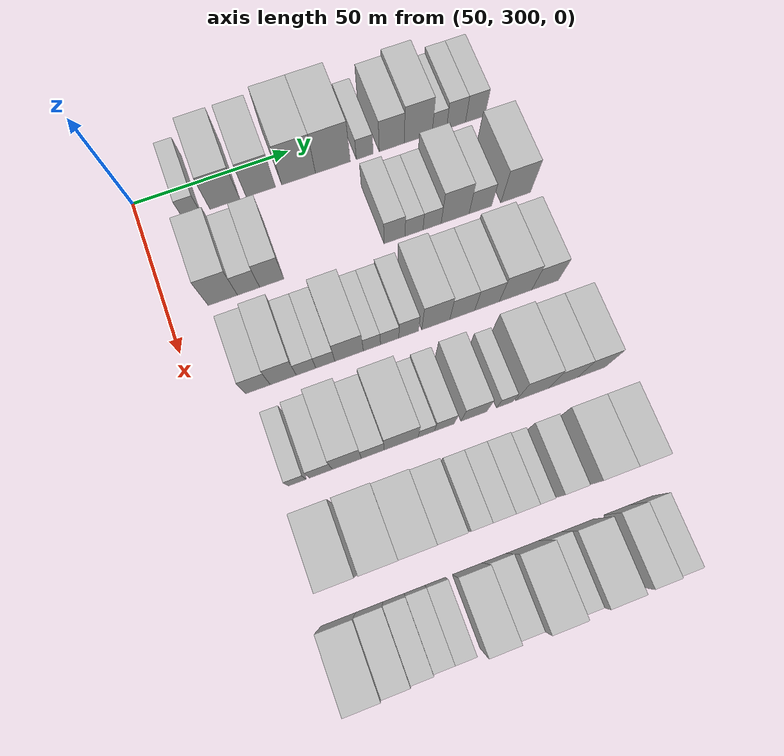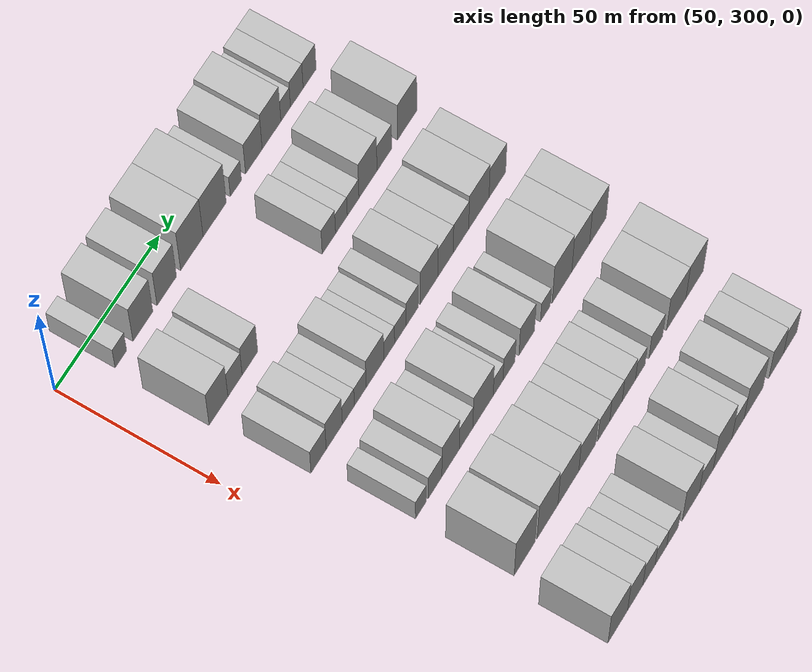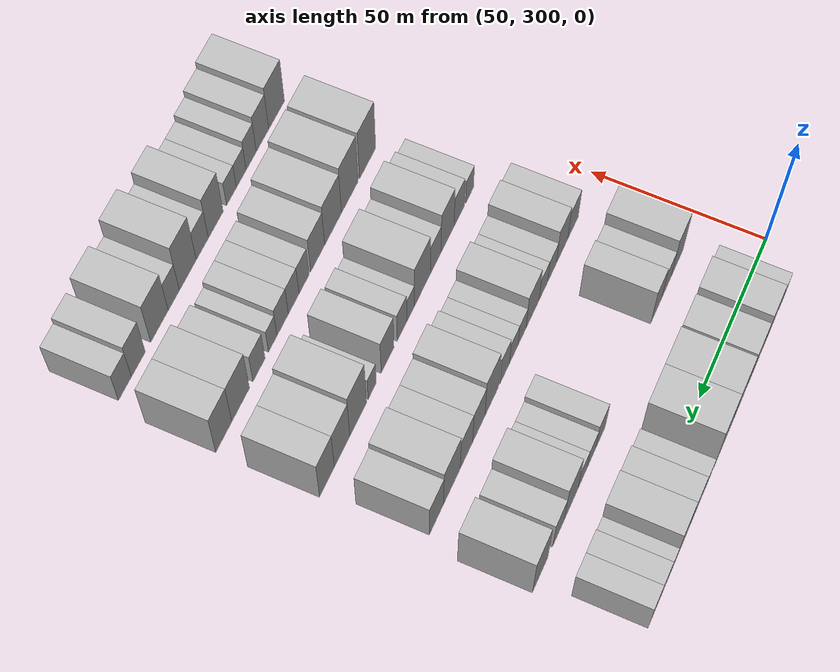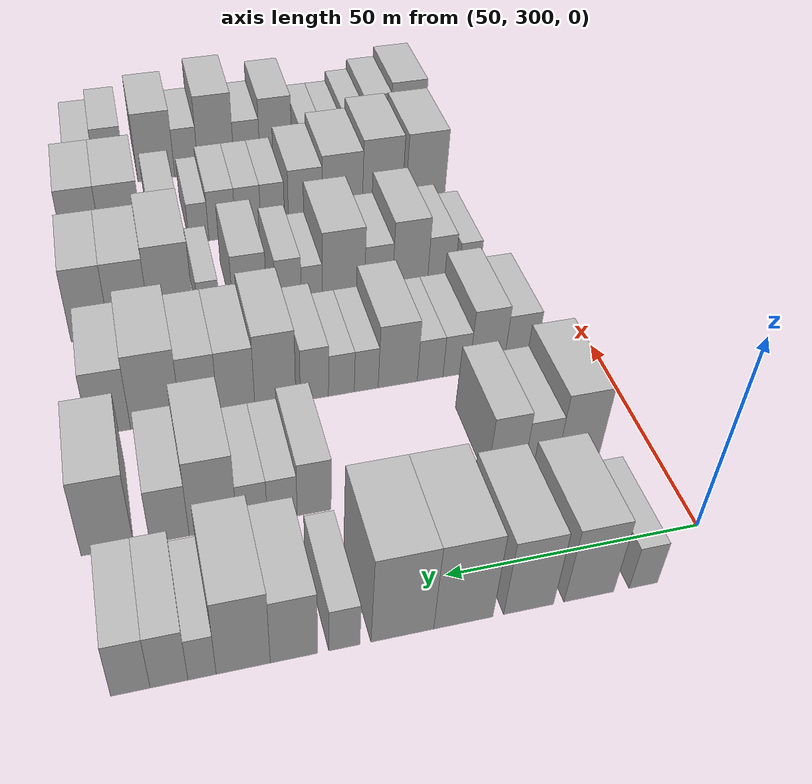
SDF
<sdf version="1.6">
 <world name="default">
  <model name="building_85">
   <static>1</static>
   <pose>50.0000 315.7979 0 0.000000 0.000000 0.000000</pose>
   <link name="link">
    <pose>0 0 6.00 0 0 0</pose>
    <collision name="collision"><geometry><box><size>20.0000 5.5431 12.0000</size></box></geometry></collision>
    <visual name="visual">
     <cast_shadows>0</cast_shadows>
     <geometry><box><size>20.0000 5.5431 12.0000</size></box></geometry>
     <material>
      <script>
       <uri>model://HANNAS_wall/materials/scripts</uri>
       <uri>model://HANNAS_wall/materials/textures</uri>
       <name>vrc/HANNAS_wall</name>
      </script>
     </material>
    </visual>
   </link>
  </model>
  <model name="building_86">
   <static>1</static>
   <pose>50.0000 326.3496 0 0.000000 0.000000 0.000000</pose>
   <link name="link">
    <pose>0 0 10.50 0 0 0</pose>
    <collision name="collision"><geometry><box><size>20.0000 9.5605 21.0000</size></box></geometry></collision>
    <visual name="visual">
     <cast_shadows>0</cast_shadows>
     <geometry><box><size>20.0000 9.5605 21.0000</size></box></geometry>
     <material>
      <script>
       <uri>model://HANNAS_wall/materials/scripts</uri>
       <uri>model://HANNAS_wall/materials/textures</uri>
       <name>vrc/HANNAS_wall</name>
      </script>
     </material>
    </visual>
   </link>
  </model>
  <model name="building_87">
   <static>1</static>
   <pose>50.0000 337.8438 0 0.000000 0.000000 0.000000</pose>
   <link name="link">
    <pose>0 0 10.50 0 0 0</pose>
    <collision name="collision"><geometry><box><size>20.0000 9.4279 21.0000</size></box></geometry></collision>
    <visual name="visual">
     <cast_shadows>0</cast_shadows>
     <geometry><box><size>20.0000 9.4279 21.0000</size></box></geometry>
     <material>
      <script>
       <uri>model://HANNAS_wall/materials/scripts</uri>
       <uri>model://HANNAS_wall/materials/textures</uri>
       <name>vrc/HANNAS_wall</name>
      </script>
     </material>
    </visual>
   </link>
  </model>
  <model name="building_88">
   <static>1</static>
   <pose>50.0000 350.0342 0 0.000000 0.000000 0.000000</pose>
   <link name="link">
    <pose>0 0 12.00 0 0 0</pose>
    <collision name="collision"><geometry><box><size>20.0000 10.9529 24.0000</size></box></geometry></collision>
    <visual name="visual">
     <cast_shadows>0</cast_shadows>
     <geometry><box><size>20.0000 10.9529 24.0000</size></box></geometry>
     <material>
      <script>
       <uri>model://HANNAS_wall/materials/scripts</uri>
       <uri>model://HANNAS_wall/materials/textures</uri>
       <name>vrc/HANNAS_wall</name>
      </script>
     </material>
    </visual>
   </link>
  </model>
  <model name="building_89">
   <static>1</static>
   <pose>50.0000 361.1943 0 0.000000 0.000000 0.000000</pose>
   <link name="link">
    <pose>0 0 12.00 0 0 0</pose>
    <collision name="collision"><geometry><box><size>20.0000 11.3672 24.0000</size></box></geometry></collision>
    <visual name="visual">
     <cast_shadows>0</cast_shadows>
     <geometry><box><size>20.0000 11.3672 24.0000</size></box></geometry>
     <material>
      <script>
       <uri>model://HANNAS_wall/materials/scripts</uri>
       <uri>model://HANNAS_wall/materials/textures</uri>
       <name>vrc/HANNAS_wall</name>
      </script>
     </material>
    </visual>
   </link>
  </model>
  <model name="building_90">
   <static>1</static>
   <pose>50.0000 371.6394 0 0.000000 0.000000 0.000000</pose>
   <link name="link">
    <pose>0 0 6.00 0 0 0</pose>
    <collision name="collision"><geometry><box><size>20.0000 5.5231 12.0000</size></box></geometry></collision>
    <visual name="visual">
     <cast_shadows>0</cast_shadows>
     <geometry><box><size>20.0000 5.5231 12.0000</size></box></geometry>
     <material>
      <script>
       <uri>model://HANNAS_wall/materials/scripts</uri>
       <uri>model://HANNAS_wall/materials/textures</uri>
       <name>vrc/HANNAS_wall</name>
      </script>
     </material>
    </visual>
   </link>
  </model>
  <model name="building_91">
   <static>1</static>
   <pose>50.0000 380.5250 0 0.000000 0.000000 0.000000</pose>
   <link name="link">
    <pose>0 0 9.00 0 0 0</pose>
    <collision name="collision"><geometry><box><size>20.0000 8.2480 18.0000</size></box></geometry></collision>
    <visual name="visual">
     <cast_shadows>0</cast_shadows>
     <geometry><box><size>20.0000 8.2480 18.0000</size></box></geometry>
     <material>
      <script>
       <uri>model://HANNAS_wall/materials/scripts</uri>
       <uri>model://HANNAS_wall/materials/textures</uri>
       <name>vrc/HANNAS_wall</name>
      </script>
     </material>
    </visual>
   </link>
  </model>
  <model name="building_92">
   <static>1</static>
   <pose>50.0000 389.3127 0 0.000000 0.000000 0.000000</pose>
   <link name="link">
    <pose>0 0 10.50 0 0 0</pose>
    <collision name="collision"><geometry><box><size>20.0000 9.3274 21.0000</size></box></geometry></collision>
    <visual name="visual">
     <cast_shadows>0</cast_shadows>
     <geometry><box><size>20.0000 9.3274 21.0000</size></box></geometry>
     <material>
      <script>
       <uri>model://HANNAS_wall/materials/scripts</uri>
       <uri>model://HANNAS_wall/materials/textures</uri>
       <name>vrc/HANNAS_wall</name>
      </script>
     </material>
    </visual>
   </link>
  </model>
  <model name="building_93">
   <static>1</static>
   <pose>50.0000 396.3775 0 0.000000 0.000000 0.000000</pose>
   <link name="link">
    <pose>0 0 6.00 0 0 0</pose>
    <collision name="collision"><geometry><box><size>20.0000 4.8023 12.0000</size></box></geometry></collision>
    <visual name="visual">
     <cast_shadows>0</cast_shadows>
     <geometry><box><size>20.0000 4.8023 12.0000</size></box></geometry>
     <material>
      <script>
       <uri>model://HANNAS_wall/materials/scripts</uri>
       <uri>model://HANNAS_wall/materials/textures</uri>
       <name>vrc/HANNAS_wall</name>
      </script>
     </material>
    </visual>
   </link>
  </model>
  <model name="building_94">
   <static>1</static>
   <pose>50.0000 401.9674 0 0.000000 0.000000 0.000000</pose>
   <link name="link">
    <pose>0 0 7.50 0 0 0</pose>
    <collision name="collision"><geometry><box><size>20.0000 6.3776 15.0000</size></box></geometry></collision>
    <visual name="visual">
     <cast_shadows>0</cast_shadows>
     <geometry><box><size>20.0000 6.3776 15.0000</size></box></geometry>
     <material>
      <script>
       <uri>model://HANNAS_wall/materials/scripts</uri>
       <uri>model://HANNAS_wall/materials/textures</uri>
       <name>vrc/HANNAS_wall</name>
      </script>
     </material>
    </visual>
   </link>
  </model>
  <model name="building_95">
   <static>1</static>
   <pose>50.0000 408.4532 0 0.000000 0.000000 0.000000</pose>
   <link name="link">
    <pose>0 0 7.50 0 0 0</pose>
    <collision name="collision"><geometry><box><size>20.0000 6.5940 15.0000</size></box></geometry></collision>
    <visual name="visual">
     <cast_shadows>0</cast_shadows>
     <geometry><box><size>20.0000 6.5940 15.0000</size></box></geometry>
     <material>
      <script>
       <uri>model://HANNAS_wall/materials/scripts</uri>
       <uri>model://HANNAS_wall/materials/textures</uri>
       <name>vrc/HANNAS_wall</name>
      </script>
     </material>
    </visual>
   </link>
  </model>
  <model name="building_198">
   <static>1</static>
   <pose>79.0000 316.5229 0 0.000000 0.000000 0.000000</pose>
   <link name="link">
    <pose>0 0 10.50 0 0 0</pose>
    <collision name="collision"><geometry><box><size>20.0000 9.0711 21.0000</size></box></geometry></collision>
    <visual name="visual">
     <cast_shadows>0</cast_shadows>
     <geometry><box><size>20.0000 9.0711 21.0000</size></box></geometry>
     <material>
      <script>
       <uri>model://HANNAS_wall/materials/scripts</uri>
       <uri>model://HANNAS_wall/materials/textures</uri>
       <name>vrc/HANNAS_wall</name>
      </script>
     </material>
    </visual>
   </link>
  </model>
  <model name="building_199">
   <static>1</static>
   <pose>79.0000 324.5055 0 0.000000 0.000000 0.000000</pose>
   <link name="link">
    <pose>0 0 7.50 0 0 0</pose>
    <collision name="collision"><geometry><box><size>20.0000 6.8941 15.0000</size></box></geometry></collision>
    <visual name="visual">
     <cast_shadows>0</cast_shadows>
     <geometry><box><size>20.0000 6.8941 15.0000</size></box></geometry>
     <material>
      <script>
       <uri>model://HANNAS_wall/materials/scripts</uri>
       <uri>model://HANNAS_wall/materials/textures</uri>
       <name>vrc/HANNAS_wall</name>
      </script>
     </material>
    </visual>
   </link>
  </model>
  <model name="building_200">
   <static>1</static>
   <pose>79.0000 331.7432 0 0.000000 0.000000 0.000000</pose>
   <link name="link">
    <pose>0 0 9.00 0 0 0</pose>
    <collision name="collision"><geometry><box><size>20.0000 7.5812 18.0000</size></box></geometry></collision>
    <visual name="visual">
     <cast_shadows>0</cast_shadows>
     <geometry><box><size>20.0000 7.5812 18.0000</size></box></geometry>
     <material>
      <script>
       <uri>model://HANNAS_wall/materials/scripts</uri>
       <uri>model://HANNAS_wall/materials/textures</uri>
       <name>vrc/HANNAS_wall</name>
      </script>
     </material>
    </visual>
   </link>
  </model>
  <model name="building_201">
   <static>1</static>
   <pose>79.0000 370.5693 0 0.000000 0.000000 0.000000</pose>
   <link name="link">
    <pose>0 0 7.50 0 0 0</pose>
    <collision name="collision"><geometry><box><size>20.0000 6.6903 15.0000</size></box></geometry></collision>
    <visual name="visual">
     <cast_shadows>0</cast_shadows>
     <geometry><box><size>20.0000 6.6903 15.0000</size></box></geometry>
     <material>
      <script>
       <uri>model://HANNAS_wall/materials/scripts</uri>
       <uri>model://HANNAS_wall/materials/textures</uri>
       <name>vrc/HANNAS_wall</name>
      </script>
     </material>
    </visual>
   </link>
  </model>
  <model name="building_202">
   <static>1</static>
   <pose>79.0000 376.8234 0 0.000000 0.000000 0.000000</pose>
   <link name="link">
    <pose>0 0 6.00 0 0 0</pose>
    <collision name="collision"><geometry><box><size>20.0000 5.8180 12.0000</size></box></geometry></collision>
    <visual name="visual">
     <cast_shadows>0</cast_shadows>
     <geometry><box><size>20.0000 5.8180 12.0000</size></box></geometry>
     <material>
      <script>
       <uri>model://HANNAS_wall/materials/scripts</uri>
       <uri>model://HANNAS_wall/materials/textures</uri>
       <name>vrc/HANNAS_wall</name>
      </script>
     </material>
    </visual>
   </link>
  </model>
  <model name="building_203">
   <static>1</static>
   <pose>79.0000 382.6654 0 0.000000 0.000000 0.000000</pose>
   <link name="link">
    <pose>0 0 6.00 0 0 0</pose>
    <collision name="collision"><geometry><box><size>20.0000 5.8659 12.0000</size></box></geometry></collision>
    <visual name="visual">
     <cast_shadows>0</cast_shadows>
     <geometry><box><size>20.0000 5.8659 12.0000</size></box></geometry>
     <material>
      <script>
       <uri>model://HANNAS_wall/materials/scripts</uri>
       <uri>model://HANNAS_wall/materials/textures</uri>
       <name>vrc/HANNAS_wall</name>
      </script>
     </material>
    </visual>
   </link>
  </model>
  <model name="building_204">
   <static>1</static>
   <pose>79.0000 390.1574 0 0.000000 0.000000 0.000000</pose>
   <link name="link">
    <pose>0 0 10.50 0 0 0</pose>
    <collision name="collision"><geometry><box><size>20.0000 9.1180 21.0000</size></box></geometry></collision>
    <visual name="visual">
     <cast_shadows>0</cast_shadows>
     <geometry><box><size>20.0000 9.1180 21.0000</size></box></geometry>
     <material>
      <script>
       <uri>model://HANNAS_wall/materials/scripts</uri>
       <uri>model://HANNAS_wall/materials/textures</uri>
       <name>vrc/HANNAS_wall</name>
      </script>
     </material>
    </visual>
   </link>
  </model>
  <model name="building_205">
   <static>1</static>
   <pose>79.0000 398.4284 0 0.000000 0.000000 0.000000</pose>
   <link name="link">
    <pose>0 0 7.50 0 0 0</pose>
    <collision name="collision"><geometry><box><size>20.0000 7.4241 15.0000</size></box></geometry></collision>
    <visual name="visual">
     <cast_shadows>0</cast_shadows>
     <geometry><box><size>20.0000 7.4241 15.0000</size></box></geometry>
     <material>
      <script>
       <uri>model://HANNAS_wall/materials/scripts</uri>
       <uri>model://HANNAS_wall/materials/textures</uri>
       <name>vrc/HANNAS_wall</name>
      </script>
     </material>
    </visual>
   </link>
  </model>
  <model name="building_206">
   <static>1</static>
   <pose>79.0000 410.0392 0 0.000000 0.000000 0.000000</pose>
   <link name="link">
    <pose>0 0 10.50 0 0 0</pose>
    <collision name="collision"><geometry><box><size>20.0000 9.7975 21.0000</size></box></geometry></collision>
    <visual name="visual">
     <cast_shadows>0</cast_shadows>
     <geometry><box><size>20.0000 9.7975 21.0000</size></box></geometry>
     <material>
      <script>
       <uri>model://HANNAS_wall/materials/scripts</uri>
       <uri>model://HANNAS_wall/materials/textures</uri>
       <name>vrc/HANNAS_wall</name>
      </script>
     </material>
    </visual>
   </link>
  </model>
  <model name="building_303">
   <static>1</static>
   <pose>108.0000 317.9214 0 0.000000 0.000000 0.000000</pose>
   <link name="link">
    <pose>0 0 7.50 0 0 0</pose>
    <collision name="collision"><geometry><box><size>20.0000 7.4263 15.0000</size></box></geometry></collision>
    <visual name="visual">
     <cast_shadows>0</cast_shadows>
     <geometry><box><size>20.0000 7.4263 15.0000</size></box></geometry>
     <material>
      <script>
       <uri>model://HANNAS_wall/materials/scripts</uri>
       <uri>model://HANNAS_wall/materials/textures</uri>
       <name>vrc/HANNAS_wall</name>
      </script>
     </material>
    </visual>
   </link>
  </model>
  <model name="building_304">
   <static>1</static>
   <pose>108.0000 325.5840 0 0.000000 0.000000 0.000000</pose>
   <link name="link">
    <pose>0 0 9.00 0 0 0</pose>
    <collision name="collision"><geometry><box><size>20.0000 7.8989 18.0000</size></box></geometry></collision>
    <visual name="visual">
     <cast_shadows>0</cast_shadows>
     <geometry><box><size>20.0000 7.8989 18.0000</size></box></geometry>
     <material>
      <script>
       <uri>model://HANNAS_wall/materials/scripts</uri>
       <uri>model://HANNAS_wall/materials/textures</uri>
       <name>vrc/HANNAS_wall</name>
      </script>
     </material>
    </visual>
   </link>
  </model>
  <model name="building_305">
   <static>1</static>
   <pose>108.0000 332.5083 0 0.000000 0.000000 0.000000</pose>
   <link name="link">
    <pose>0 0 6.00 0 0 0</pose>
    <collision name="collision"><geometry><box><size>20.0000 5.9497 12.0000</size></box></geometry></collision>
    <visual name="visual">
     <cast_shadows>0</cast_shadows>
     <geometry><box><size>20.0000 5.9497 12.0000</size></box></geometry>
     <material>
      <script>
       <uri>model://HANNAS_wall/materials/scripts</uri>
       <uri>model://HANNAS_wall/materials/textures</uri>
       <name>vrc/HANNAS_wall</name>
      </script>
     </material>
    </visual>
   </link>
  </model>
  <model name="building_306">
   <static>1</static>
   <pose>108.0000 338.3884 0 0.000000 0.000000 0.000000</pose>
   <link name="link">
    <pose>0 0 6.00 0 0 0</pose>
    <collision name="collision"><geometry><box><size>20.0000 5.8105 12.0000</size></box></geometry></collision>
    <visual name="visual">
     <cast_shadows>0</cast_shadows>
     <geometry><box><size>20.0000 5.8105 12.0000</size></box></geometry>
     <material>
      <script>
       <uri>model://HANNAS_wall/materials/scripts</uri>
       <uri>model://HANNAS_wall/materials/textures</uri>
       <name>vrc/HANNAS_wall</name>
      </script>
     </material>
    </visual>
   </link>
  </model>
  <model name="building_307">
   <static>1</static>
   <pose>108.0000 345.6758 0 0.000000 0.000000 0.000000</pose>
   <link name="link">
    <pose>0 0 9.00 0 0 0</pose>
    <collision name="collision"><geometry><box><size>20.0000 8.7642 18.0000</size></box></geometry></collision>
    <visual name="visual">
     <cast_shadows>0</cast_shadows>
     <geometry><box><size>20.0000 8.7642 18.0000</size></box></geometry>
     <material>
      <script>
       <uri>model://HANNAS_wall/materials/scripts</uri>
       <uri>model://HANNAS_wall/materials/textures</uri>
       <name>vrc/HANNAS_wall</name>
      </script>
     </material>
    </visual>
   </link>
  </model>
  <model name="building_308">
   <static>1</static>
   <pose>108.0000 352.7109 0 0.000000 0.000000 0.000000</pose>
   <link name="link">
    <pose>0 0 6.00 0 0 0</pose>
    <collision name="collision"><geometry><box><size>20.0000 5.3061 12.0000</size></box></geometry></collision>
    <visual name="visual">
     <cast_shadows>0</cast_shadows>
     <geometry><box><size>20.0000 5.3061 12.0000</size></box></geometry>
     <material>
      <script>
       <uri>model://HANNAS_wall/materials/scripts</uri>
       <uri>model://HANNAS_wall/materials/textures</uri>
       <name>vrc/HANNAS_wall</name>
      </script>
     </material>
    </visual>
   </link>
  </model>
  <model name="building_309">
   <static>1</static>
   <pose>108.0000 358.1992 0 0.000000 0.000000 0.000000</pose>
   <link name="link">
    <pose>0 0 6.00 0 0 0</pose>
    <collision name="collision"><geometry><box><size>20.0000 5.6704 12.0000</size></box></geometry></collision>
    <visual name="visual">
     <cast_shadows>0</cast_shadows>
     <geometry><box><size>20.0000 5.6704 12.0000</size></box></geometry>
     <material>
      <script>
       <uri>model://HANNAS_wall/materials/scripts</uri>
       <uri>model://HANNAS_wall/materials/textures</uri>
       <name>vrc/HANNAS_wall</name>
      </script>
     </material>
    </visual>
   </link>
  </model>
  <model name="building_310">
   <static>1</static>
   <pose>108.0000 364.1010 0 0.000000 0.000000 0.000000</pose>
   <link name="link">
    <pose>0 0 7.50 0 0 0</pose>
    <collision name="collision"><geometry><box><size>20.0000 6.1331 15.0000</size></box></geometry></collision>
    <visual name="visual">
     <cast_shadows>0</cast_shadows>
     <geometry><box><size>20.0000 6.1331 15.0000</size></box></geometry>
     <material>
      <script>
       <uri>model://HANNAS_wall/materials/scripts</uri>
       <uri>model://HANNAS_wall/materials/textures</uri>
       <name>vrc/HANNAS_wall</name>
      </script>
     </material>
    </visual>
   </link>
  </model>
  <model name="building_311">
   <static>1</static>
   <pose>108.0000 372.5621 0 0.000000 0.000000 0.000000</pose>
   <link name="link">
    <pose>0 0 10.50 0 0 0</pose>
    <collision name="collision"><geometry><box><size>20.0000 8.7891 21.0000</size></box></geometry></collision>
    <visual name="visual">
     <cast_shadows>0</cast_shadows>
     <geometry><box><size>20.0000 8.7891 21.0000</size></box></geometry>
     <material>
      <script>
       <uri>model://HANNAS_wall/materials/scripts</uri>
       <uri>model://HANNAS_wall/materials/textures</uri>
       <name>vrc/HANNAS_wall</name>
      </script>
     </material>
    </visual>
   </link>
  </model>
  <model name="building_312">
   <static>1</static>
   <pose>108.0000 380.8863 0 0.000000 0.000000 0.000000</pose>
   <link name="link">
    <pose>0 0 9.00 0 0 0</pose>
    <collision name="collision"><geometry><box><size>20.0000 7.8594 18.0000</size></box></geometry></collision>
    <visual name="visual">
     <cast_shadows>0</cast_shadows>
     <geometry><box><size>20.0000 7.8594 18.0000</size></box></geometry>
     <material>
      <script>
       <uri>model://HANNAS_wall/materials/scripts</uri>
       <uri>model://HANNAS_wall/materials/textures</uri>
       <name>vrc/HANNAS_wall</name>
      </script>
     </material>
    </visual>
   </link>
  </model>
  <model name="building_313">
   <static>1</static>
   <pose>108.0000 388.7379 0 0.000000 0.000000 0.000000</pose>
   <link name="link">
    <pose>0 0 9.00 0 0 0</pose>
    <collision name="collision"><geometry><box><size>20.0000 7.8436 18.0000</size></box></geometry></collision>
    <visual name="visual">
     <cast_shadows>0</cast_shadows>
     <geometry><box><size>20.0000 7.8436 18.0000</size></box></geometry>
     <material>
      <script>
       <uri>model://HANNAS_wall/materials/scripts</uri>
       <uri>model://HANNAS_wall/materials/textures</uri>
       <name>vrc/HANNAS_wall</name>
      </script>
     </material>
    </visual>
   </link>
  </model>
  <model name="building_314">
   <static>1</static>
   <pose>108.0000 397.8524 0 0.000000 0.000000 0.000000</pose>
   <link name="link">
    <pose>0 0 10.50 0 0 0</pose>
    <collision name="collision"><geometry><box><size>20.0000 10.3856 21.0000</size></box></geometry></collision>
    <visual name="visual">
     <cast_shadows>0</cast_shadows>
     <geometry><box><size>20.0000 10.3856 21.0000</size></box></geometry>
     <material>
      <script>
       <uri>model://HANNAS_wall/materials/scripts</uri>
       <uri>model://HANNAS_wall/materials/textures</uri>
       <name>vrc/HANNAS_wall</name>
      </script>
     </material>
    </visual>
   </link>
  </model>
  <model name="building_315">
   <static>1</static>
   <pose>108.0000 407.3504 0 0.000000 0.000000 0.000000</pose>
   <link name="link">
    <pose>0 0 9.00 0 0 0</pose>
    <collision name="collision"><geometry><box><size>20.0000 8.6105 18.0000</size></box></geometry></collision>
    <visual name="visual">
     <cast_shadows>0</cast_shadows>
     <geometry><box><size>20.0000 8.6105 18.0000</size></box></geometry>
     <material>
      <script>
       <uri>model://HANNAS_wall/materials/scripts</uri>
       <uri>model://HANNAS_wall/materials/textures</uri>
       <name>vrc/HANNAS_wall</name>
      </script>
     </material>
    </visual>
   </link>
  </model>
  <model name="building_421">
   <static>1</static>
   <pose>137.0000 319.9245 0 0.000000 0.000000 0.000000</pose>
   <link name="link">
    <pose>0 0 6.00 0 0 0</pose>
    <collision name="collision"><geometry><box><size>20.0000 5.2541 12.0000</size></box></geometry></collision>
    <visual name="visual">
     <cast_shadows>0</cast_shadows>
     <geometry><box><size>20.0000 5.2541 12.0000</size></box></geometry>
     <material>
      <script>
       <uri>model://HANNAS_wall/materials/scripts</uri>
       <uri>model://HANNAS_wall/materials/textures</uri>
       <name>vrc/HANNAS_wall</name>
      </script>
     </material>
    </visual>
   </link>
  </model>
  <model name="building_422">
   <static>1</static>
   <pose>137.0000 326.9201 0 0.000000 0.000000 0.000000</pose>
   <link name="link">
    <pose>0 0 7.50 0 0 0</pose>
    <collision name="collision"><geometry><box><size>20.0000 6.7370 15.0000</size></box></geometry></collision>
    <visual name="visual">
     <cast_shadows>0</cast_shadows>
     <geometry><box><size>20.0000 6.7370 15.0000</size></box></geometry>
     <material>
      <script>
       <uri>model://HANNAS_wall/materials/scripts</uri>
       <uri>model://HANNAS_wall/materials/textures</uri>
       <name>vrc/HANNAS_wall</name>
      </script>
     </material>
    </visual>
   </link>
  </model>
  <model name="building_423">
   <static>1</static>
   <pose>137.0000 334.6000 0 0.000000 0.000000 0.000000</pose>
   <link name="link">
    <pose>0 0 10.50 0 0 0</pose>
    <collision name="collision"><geometry><box><size>20.0000 8.6229 21.0000</size></box></geometry></collision>
    <visual name="visual">
     <cast_shadows>0</cast_shadows>
     <geometry><box><size>20.0000 8.6229 21.0000</size></box></geometry>
     <material>
      <script>
       <uri>model://HANNAS_wall/materials/scripts</uri>
       <uri>model://HANNAS_wall/materials/textures</uri>
       <name>vrc/HANNAS_wall</name>
      </script>
     </material>
    </visual>
   </link>
  </model>
  <model name="building_424">
   <static>1</static>
   <pose>137.0000 342.2988 0 0.000000 0.000000 0.000000</pose>
   <link name="link">
    <pose>0 0 7.50 0 0 0</pose>
    <collision name="collision"><geometry><box><size>20.0000 6.7746 15.0000</size></box></geometry></collision>
    <visual name="visual">
     <cast_shadows>0</cast_shadows>
     <geometry><box><size>20.0000 6.7746 15.0000</size></box></geometry>
     <material>
      <script>
       <uri>model://HANNAS_wall/materials/scripts</uri>
       <uri>model://HANNAS_wall/materials/textures</uri>
       <name>vrc/HANNAS_wall</name>
      </script>
     </material>
    </visual>
   </link>
  </model>
  <model name="building_425">
   <static>1</static>
   <pose>137.0000 350.7917 0 0.000000 0.000000 0.000000</pose>
   <link name="link">
    <pose>0 0 10.50 0 0 0</pose>
    <collision name="collision"><geometry><box><size>20.0000 10.2112 21.0000</size></box></geometry></collision>
    <visual name="visual">
     <cast_shadows>0</cast_shadows>
     <geometry><box><size>20.0000 10.2112 21.0000</size></box></geometry>
     <material>
      <script>
       <uri>model://HANNAS_wall/materials/scripts</uri>
       <uri>model://HANNAS_wall/materials/textures</uri>
       <name>vrc/HANNAS_wall</name>
      </script>
     </material>
    </visual>
   </link>
  </model>
  <model name="building_426">
   <static>1</static>
   <pose>137.0000 358.3612 0 0.000000 0.000000 0.000000</pose>
   <link name="link">
    <pose>0 0 6.00 0 0 0</pose>
    <collision name="collision"><geometry><box><size>20.0000 4.9278 12.0000</size></box></geometry></collision>
    <visual name="visual">
     <cast_shadows>0</cast_shadows>
     <geometry><box><size>20.0000 4.9278 12.0000</size></box></geometry>
     <material>
      <script>
       <uri>model://HANNAS_wall/materials/scripts</uri>
       <uri>model://HANNAS_wall/materials/textures</uri>
       <name>vrc/HANNAS_wall</name>
      </script>
     </material>
    </visual>
   </link>
  </model>
  <model name="building_427">
   <static>1</static>
   <pose>137.0000 363.8681 0 0.000000 0.000000 0.000000</pose>
   <link name="link">
    <pose>0 0 7.50 0 0 0</pose>
    <collision name="collision"><geometry><box><size>20.0000 6.0860 15.0000</size></box></geometry></collision>
    <visual name="visual">
     <cast_shadows>0</cast_shadows>
     <geometry><box><size>20.0000 6.0860 15.0000</size></box></geometry>
     <material>
      <script>
       <uri>model://HANNAS_wall/materials/scripts</uri>
       <uri>model://HANNAS_wall/materials/textures</uri>
       <name>vrc/HANNAS_wall</name>
      </script>
     </material>
    </visual>
   </link>
  </model>
  <model name="building_428">
   <static>1</static>
   <pose>137.0000 372.8787 0 0.000000 0.000000 0.000000</pose>
   <link name="link">
    <pose>0 0 9.00 0 0 0</pose>
    <collision name="collision"><geometry><box><size>20.0000 7.9352 18.0000</size></box></geometry></collision>
    <visual name="visual">
     <cast_shadows>0</cast_shadows>
     <geometry><box><size>20.0000 7.9352 18.0000</size></box></geometry>
     <material>
      <script>
       <uri>model://HANNAS_wall/materials/scripts</uri>
       <uri>model://HANNAS_wall/materials/textures</uri>
       <name>vrc/HANNAS_wall</name>
      </script>
     </material>
    </visual>
   </link>
  </model>
  <model name="building_429">
   <static>1</static>
   <pose>137.0000 382.3385 0 0.000000 0.000000 0.000000</pose>
   <link name="link">
    <pose>0 0 6.00 0 0 0</pose>
    <collision name="collision"><geometry><box><size>20.0000 4.9844 12.0000</size></box></geometry></collision>
    <visual name="visual">
     <cast_shadows>0</cast_shadows>
     <geometry><box><size>20.0000 4.9844 12.0000</size></box></geometry>
     <material>
      <script>
       <uri>model://HANNAS_wall/materials/scripts</uri>
       <uri>model://HANNAS_wall/materials/textures</uri>
       <name>vrc/HANNAS_wall</name>
      </script>
     </material>
    </visual>
   </link>
  </model>
  <model name="building_430">
   <static>1</static>
   <pose>137.0000 390.8754 0 0.000000 0.000000 0.000000</pose>
   <link name="link">
    <pose>0 0 12.00 0 0 0</pose>
    <collision name="collision"><geometry><box><size>20.0000 10.0893 24.0000</size></box></geometry></collision>
    <visual name="visual">
     <cast_shadows>0</cast_shadows>
     <geometry><box><size>20.0000 10.0893 24.0000</size></box></geometry>
     <material>
      <script>
       <uri>model://HANNAS_wall/materials/scripts</uri>
       <uri>model://HANNAS_wall/materials/textures</uri>
       <name>vrc/HANNAS_wall</name>
      </script>
     </material>
    </visual>
   </link>
  </model>
  <model name="building_431">
   <static>1</static>
   <pose>137.0000 400.5098 0 0.000000 0.000000 0.000000</pose>
   <link name="link">
    <pose>0 0 10.50 0 0 0</pose>
    <collision name="collision"><geometry><box><size>20.0000 9.1795 21.0000</size></box></geometry></collision>
    <visual name="visual">
     <cast_shadows>0</cast_shadows>
     <geometry><box><size>20.0000 9.1795 21.0000</size></box></geometry>
     <material>
      <script>
       <uri>model://HANNAS_wall/materials/scripts</uri>
       <uri>model://HANNAS_wall/materials/textures</uri>
       <name>vrc/HANNAS_wall</name>
      </script>
     </material>
    </visual>
   </link>
  </model>
  <model name="building_432">
   <static>1</static>
   <pose>137.0000 409.4385 0 0.000000 0.000000 0.000000</pose>
   <link name="link">
    <pose>0 0 10.50 0 0 0</pose>
    <collision name="collision"><geometry><box><size>20.0000 8.6778 21.0000</size></box></geometry></collision>
    <visual name="visual">
     <cast_shadows>0</cast_shadows>
     <geometry><box><size>20.0000 8.6778 21.0000</size></box></geometry>
     <material>
      <script>
       <uri>model://HANNAS_wall/materials/scripts</uri>
       <uri>model://HANNAS_wall/materials/textures</uri>
       <name>vrc/HANNAS_wall</name>
      </script>
     </material>
    </visual>
   </link>
  </model>
  <model name="building_541">
   <static>1</static>
   <pose>166.0000 322.1683 0 0.000000 0.000000 0.000000</pose>
   <link name="link">
    <pose>0 0 12.00 0 0 0</pose>
    <collision name="collision"><geometry><box><size>20.0000 10.3713 24.0000</size></box></geometry></collision>
    <visual name="visual">
     <cast_shadows>0</cast_shadows>
     <geometry><box><size>20.0000 10.3713 24.0000</size></box></geometry>
     <material>
      <script>
       <uri>model://HANNAS_wall/materials/scripts</uri>
       <uri>model://HANNAS_wall/materials/textures</uri>
       <name>vrc/HANNAS_wall</name>
      </script>
     </material>
    </visual>
   </link>
  </model>
  <model name="building_542">
   <static>1</static>
   <pose>166.0000 333.5852 0 0.000000 0.000000 0.000000</pose>
   <link name="link">
    <pose>0 0 12.00 0 0 0</pose>
    <collision name="collision"><geometry><box><size>20.0000 10.4626 24.0000</size></box></geometry></collision>
    <visual name="visual">
     <cast_shadows>0</cast_shadows>
     <geometry><box><size>20.0000 10.4626 24.0000</size></box></geometry>
     <material>
      <script>
       <uri>model://HANNAS_wall/materials/scripts</uri>
       <uri>model://HANNAS_wall/materials/textures</uri>
       <name>vrc/HANNAS_wall</name>
      </script>
     </material>
    </visual>
   </link>
  </model>
  <model name="building_543">
   <static>1</static>
   <pose>166.0000 344.0571 0 0.000000 0.000000 0.000000</pose>
   <link name="link">
    <pose>0 0 10.50 0 0 0</pose>
    <collision name="collision"><geometry><box><size>20.0000 10.4813 21.0000</size></box></geometry></collision>
    <visual name="visual">
     <cast_shadows>0</cast_shadows>
     <geometry><box><size>20.0000 10.4813 21.0000</size></box></geometry>
     <material>
      <script>
       <uri>model://HANNAS_wall/materials/scripts</uri>
       <uri>model://HANNAS_wall/materials/textures</uri>
       <name>vrc/HANNAS_wall</name>
      </script>
     </material>
    </visual>
   </link>
  </model>
  <model name="building_544">
   <static>1</static>
   <pose>166.0000 353.6237 0 0.000000 0.000000 0.000000</pose>
   <link name="link">
    <pose>0 0 9.00 0 0 0</pose>
    <collision name="collision"><geometry><box><size>20.0000 8.6518 18.0000</size></box></geometry></collision>
    <visual name="visual">
     <cast_shadows>0</cast_shadows>
     <geometry><box><size>20.0000 8.6518 18.0000</size></box></geometry>
     <material>
      <script>
       <uri>model://HANNAS_wall/materials/scripts</uri>
       <uri>model://HANNAS_wall/materials/textures</uri>
       <name>vrc/HANNAS_wall</name>
      </script>
     </material>
    </visual>
   </link>
  </model>
  <model name="building_545">
   <static>1</static>
   <pose>166.0000 361.9848 0 0.000000 0.000000 0.000000</pose>
   <link name="link">
    <pose>0 0 7.50 0 0 0</pose>
    <collision name="collision"><geometry><box><size>20.0000 6.0704 15.0000</size></box></geometry></collision>
    <visual name="visual">
     <cast_shadows>0</cast_shadows>
     <geometry><box><size>20.0000 6.0704 15.0000</size></box></geometry>
     <material>
      <script>
       <uri>model://HANNAS_wall/materials/scripts</uri>
       <uri>model://HANNAS_wall/materials/textures</uri>
       <name>vrc/HANNAS_wall</name>
      </script>
     </material>
    </visual>
   </link>
  </model>
  <model name="building_546">
   <static>1</static>
   <pose>166.0000 368.2371 0 0.000000 0.000000 0.000000</pose>
   <link name="link">
    <pose>0 0 7.50 0 0 0</pose>
    <collision name="collision"><geometry><box><size>20.0000 6.4341 15.0000</size></box></geometry></collision>
    <visual name="visual">
     <cast_shadows>0</cast_shadows>
     <geometry><box><size>20.0000 6.4341 15.0000</size></box></geometry>
     <material>
      <script>
       <uri>model://HANNAS_wall/materials/scripts</uri>
       <uri>model://HANNAS_wall/materials/textures</uri>
       <name>vrc/HANNAS_wall</name>
      </script>
     </material>
    </visual>
   </link>
  </model>
  <model name="building_547">
   <static>1</static>
   <pose>166.0000 374.8536 0 0.000000 0.000000 0.000000</pose>
   <link name="link">
    <pose>0 0 7.50 0 0 0</pose>
    <collision name="collision"><geometry><box><size>20.0000 6.7989 15.0000</size></box></geometry></collision>
    <visual name="visual">
     <cast_shadows>0</cast_shadows>
     <geometry><box><size>20.0000 6.7989 15.0000</size></box></geometry>
     <material>
      <script>
       <uri>model://HANNAS_wall/materials/scripts</uri>
       <uri>model://HANNAS_wall/materials/textures</uri>
       <name>vrc/HANNAS_wall</name>
      </script>
     </material>
    </visual>
   </link>
  </model>
  <model name="building_548">
   <static>1</static>
   <pose>166.0000 380.7523 0 0.000000 0.000000 0.000000</pose>
   <link name="link">
    <pose>0 0 6.00 0 0 0</pose>
    <collision name="collision"><geometry><box><size>20.0000 4.9986 12.0000</size></box></geometry></collision>
    <visual name="visual">
     <cast_shadows>0</cast_shadows>
     <geometry><box><size>20.0000 4.9986 12.0000</size></box></geometry>
     <material>
      <script>
       <uri>model://HANNAS_wall/materials/scripts</uri>
       <uri>model://HANNAS_wall/materials/textures</uri>
       <name>vrc/HANNAS_wall</name>
      </script>
     </material>
    </visual>
   </link>
  </model>
  <model name="building_549">
   <static>1</static>
   <pose>166.0000 388.7913 0 0.000000 0.000000 0.000000</pose>
   <link name="link">
    <pose>0 0 7.50 0 0 0</pose>
    <collision name="collision"><geometry><box><size>20.0000 7.0794 15.0000</size></box></geometry></collision>
    <visual name="visual">
     <cast_shadows>0</cast_shadows>
     <geometry><box><size>20.0000 7.0794 15.0000</size></box></geometry>
     <material>
      <script>
       <uri>model://HANNAS_wall/materials/scripts</uri>
       <uri>model://HANNAS_wall/materials/textures</uri>
       <name>vrc/HANNAS_wall</name>
      </script>
     </material>
    </visual>
   </link>
  </model>
  <model name="building_550">
   <static>1</static>
   <pose>166.0000 399.3958 0 0.000000 0.000000 0.000000</pose>
   <link name="link">
    <pose>0 0 10.50 0 0 0</pose>
    <collision name="collision"><geometry><box><size>20.0000 10.1298 21.0000</size></box></geometry></collision>
    <visual name="visual">
     <cast_shadows>0</cast_shadows>
     <geometry><box><size>20.0000 10.1298 21.0000</size></box></geometry>
     <material>
      <script>
       <uri>model://HANNAS_wall/materials/scripts</uri>
       <uri>model://HANNAS_wall/materials/textures</uri>
       <name>vrc/HANNAS_wall</name>
      </script>
     </material>
    </visual>
   </link>
  </model>
  <model name="building_551">
   <static>1</static>
   <pose>166.0000 409.0475 0 0.000000 0.000000 0.000000</pose>
   <link name="link">
    <pose>0 0 10.50 0 0 0</pose>
    <collision name="collision"><geometry><box><size>20.0000 9.1736 21.0000</size></box></geometry></collision>
    <visual name="visual">
     <cast_shadows>0</cast_shadows>
     <geometry><box><size>20.0000 9.1736 21.0000</size></box></geometry>
     <material>
      <script>
       <uri>model://HANNAS_wall/materials/scripts</uri>
       <uri>model://HANNAS_wall/materials/textures</uri>
       <name>vrc/HANNAS_wall</name>
      </script>
     </material>
    </visual>
   </link>
  </model>
  <model name="building_658">
   <static>1</static>
   <pose>195.0000 318.5798 0 0.000000 0.000000 0.000000</pose>
   <link name="link">
    <pose>0 0 10.50 0 0 0</pose>
    <collision name="collision"><geometry><box><size>20.0000 9.8237 21.0000</size></box></geometry></collision>
    <visual name="visual">
     <cast_shadows>0</cast_shadows>
     <geometry><box><size>20.0000 9.8237 21.0000</size></box></geometry>
     <material>
      <script>
       <uri>model://HANNAS_wall/materials/scripts</uri>
       <uri>model://HANNAS_wall/materials/textures</uri>
       <name>vrc/HANNAS_wall</name>
      </script>
     </material>
    </visual>
   </link>
  </model>
  <model name="building_659">
   <static>1</static>
   <pose>195.0000 327.3302 0 0.000000 0.000000 0.000000</pose>
   <link name="link">
    <pose>0 0 9.00 0 0 0</pose>
    <collision name="collision"><geometry><box><size>20.0000 7.6771 18.0000</size></box></geometry></collision>
    <visual name="visual">
     <cast_shadows>0</cast_shadows>
     <geometry><box><size>20.0000 7.6771 18.0000</size></box></geometry>
     <material>
      <script>
       <uri>model://HANNAS_wall/materials/scripts</uri>
       <uri>model://HANNAS_wall/materials/textures</uri>
       <name>vrc/HANNAS_wall</name>
      </script>
     </material>
    </visual>
   </link>
  </model>
  <model name="building_660">
   <static>1</static>
   <pose>195.0000 334.2736 0 0.000000 0.000000 0.000000</pose>
   <link name="link">
    <pose>0 0 7.50 0 0 0</pose>
    <collision name="collision"><geometry><box><size>20.0000 6.2098 15.0000</size></box></geometry></collision>
    <visual name="visual">
     <cast_shadows>0</cast_shadows>
     <geometry><box><size>20.0000 6.2098 15.0000</size></box></geometry>
     <material>
      <script>
       <uri>model://HANNAS_wall/materials/scripts</uri>
       <uri>model://HANNAS_wall/materials/textures</uri>
       <name>vrc/HANNAS_wall</name>
      </script>
     </material>
    </visual>
   </link>
  </model>
  <model name="building_661">
   <static>1</static>
   <pose>195.0000 340.3144 0 0.000000 0.000000 0.000000</pose>
   <link name="link">
    <pose>0 0 6.00 0 0 0</pose>
    <collision name="collision"><geometry><box><size>20.0000 5.8717 12.0000</size></box></geometry></collision>
    <visual name="visual">
     <cast_shadows>0</cast_shadows>
     <geometry><box><size>20.0000 5.8717 12.0000</size></box></geometry>
     <material>
      <script>
       <uri>model://HANNAS_wall/materials/scripts</uri>
       <uri>model://HANNAS_wall/materials/textures</uri>
       <name>vrc/HANNAS_wall</name>
      </script>
     </material>
    </visual>
   </link>
  </model>
  <model name="building_662">
   <static>1</static>
   <pose>195.0000 346.2367 0 0.000000 0.000000 0.000000</pose>
   <link name="link">
    <pose>0 0 6.00 0 0 0</pose>
    <collision name="collision"><geometry><box><size>20.0000 5.9729 12.0000</size></box></geometry></collision>
    <visual name="visual">
     <cast_shadows>0</cast_shadows>
     <geometry><box><size>20.0000 5.9729 12.0000</size></box></geometry>
     <material>
      <script>
       <uri>model://HANNAS_wall/materials/scripts</uri>
       <uri>model://HANNAS_wall/materials/textures</uri>
       <name>vrc/HANNAS_wall</name>
      </script>
     </material>
    </visual>
   </link>
  </model>
  <model name="building_663">
   <static>1</static>
   <pose>195.0000 355.6170 0 0.000000 0.000000 0.000000</pose>
   <link name="link">
    <pose>0 0 10.50 0 0 0</pose>
    <collision name="collision"><geometry><box><size>20.0000 8.7878 21.0000</size></box></geometry></collision>
    <visual name="visual">
     <cast_shadows>0</cast_shadows>
     <geometry><box><size>20.0000 8.7878 21.0000</size></box></geometry>
     <material>
      <script>
       <uri>model://HANNAS_wall/materials/scripts</uri>
       <uri>model://HANNAS_wall/materials/textures</uri>
       <name>vrc/HANNAS_wall</name>
      </script>
     </material>
    </visual>
   </link>
  </model>
  <model name="building_664">
   <static>1</static>
   <pose>195.0000 363.5595 0 0.000000 0.000000 0.000000</pose>
   <link name="link">
    <pose>0 0 7.50 0 0 0</pose>
    <collision name="collision"><geometry><box><size>20.0000 7.0971 15.0000</size></box></geometry></collision>
    <visual name="visual">
     <cast_shadows>0</cast_shadows>
     <geometry><box><size>20.0000 7.0971 15.0000</size></box></geometry>
     <material>
      <script>
       <uri>model://HANNAS_wall/materials/scripts</uri>
       <uri>model://HANNAS_wall/materials/textures</uri>
       <name>vrc/HANNAS_wall</name>
      </script>
     </material>
    </visual>
   </link>
  </model>
  <model name="building_665">
   <static>1</static>
   <pose>195.0000 371.9850 0 0.000000 0.000000 0.000000</pose>
   <link name="link">
    <pose>0 0 12.00 0 0 0</pose>
    <collision name="collision"><geometry><box><size>20.0000 9.7541 24.0000</size></box></geometry></collision>
    <visual name="visual">
     <cast_shadows>0</cast_shadows>
     <geometry><box><size>20.0000 9.7541 24.0000</size></box></geometry>
     <material>
      <script>
       <uri>model://HANNAS_wall/materials/scripts</uri>
       <uri>model://HANNAS_wall/materials/textures</uri>
       <name>vrc/HANNAS_wall</name>
      </script>
     </material>
    </visual>
   </link>
  </model>
  <model name="building_666">
   <static>1</static>
   <pose>195.0000 380.0643 0 0.000000 0.000000 0.000000</pose>
   <link name="link">
    <pose>0 0 7.50 0 0 0</pose>
    <collision name="collision"><geometry><box><size>20.0000 6.4046 15.0000</size></box></geometry></collision>
    <visual name="visual">
     <cast_shadows>0</cast_shadows>
     <geometry><box><size>20.0000 6.4046 15.0000</size></box></geometry>
     <material>
      <script>
       <uri>model://HANNAS_wall/materials/scripts</uri>
       <uri>model://HANNAS_wall/materials/textures</uri>
       <name>vrc/HANNAS_wall</name>
      </script>
     </material>
    </visual>
   </link>
  </model>
  <model name="building_667">
   <static>1</static>
   <pose>195.0000 388.2234 0 0.000000 0.000000 0.000000</pose>
   <link name="link">
    <pose>0 0 10.50 0 0 0</pose>
    <collision name="collision"><geometry><box><size>20.0000 9.9134 21.0000</size></box></geometry></collision>
    <visual name="visual">
     <cast_shadows>0</cast_shadows>
     <geometry><box><size>20.0000 9.9134 21.0000</size></box></geometry>
     <material>
      <script>
       <uri>model://HANNAS_wall/materials/scripts</uri>
       <uri>model://HANNAS_wall/materials/textures</uri>
       <name>vrc/HANNAS_wall</name>
      </script>
     </material>
    </visual>
   </link>
  </model>
  <model name="building_668">
   <static>1</static>
   <pose>195.0000 400.0445 0 0.000000 0.000000 0.000000</pose>
   <link name="link">
    <pose>0 0 9.00 0 0 0</pose>
    <collision name="collision"><geometry><box><size>20.0000 7.7288 18.0000</size></box></geometry></collision>
    <visual name="visual">
     <cast_shadows>0</cast_shadows>
     <geometry><box><size>20.0000 7.7288 18.0000</size></box></geometry>
     <material>
      <script>
       <uri>model://HANNAS_wall/materials/scripts</uri>
       <uri>model://HANNAS_wall/materials/textures</uri>
       <name>vrc/HANNAS_wall</name>
      </script>
     </material>
    </visual>
   </link>
  </model>
  <model name="building_669">
   <static>1</static>
   <pose>195.0000 407.4773 0 0.000000 0.000000 0.000000</pose>
   <link name="link">
    <pose>0 0 7.50 0 0 0</pose>
    <collision name="collision"><geometry><box><size>20.0000 7.1367 15.0000</size></box></geometry></collision>
    <visual name="visual">
     <cast_shadows>0</cast_shadows>
     <geometry><box><size>20.0000 7.1367 15.0000</size></box></geometry>
     <material>
      <script>
       <uri>model://HANNAS_wall/materials/scripts</uri>
       <uri>model://HANNAS_wall/materials/textures</uri>
       <name>vrc/HANNAS_wall</name>
      </script>
     </material>
    </visual>
   </link>
  </model>
 </world>
</sdf>
